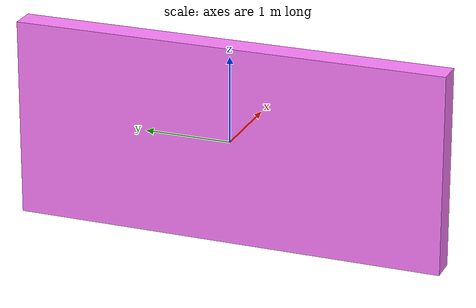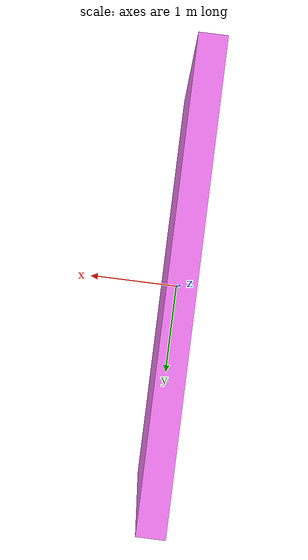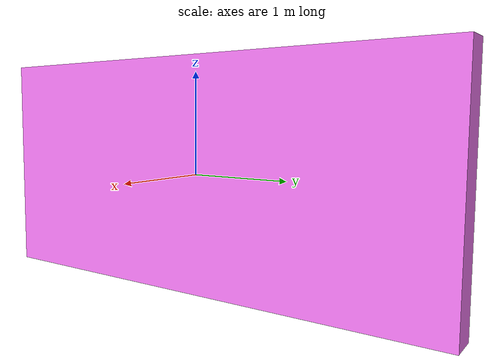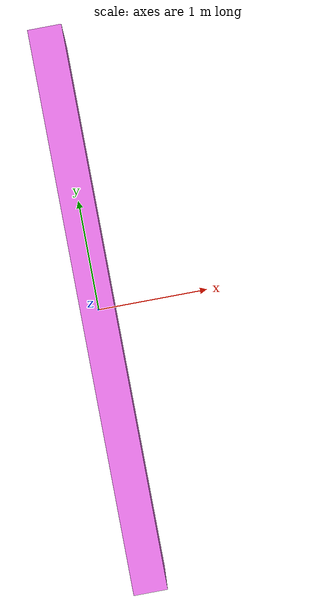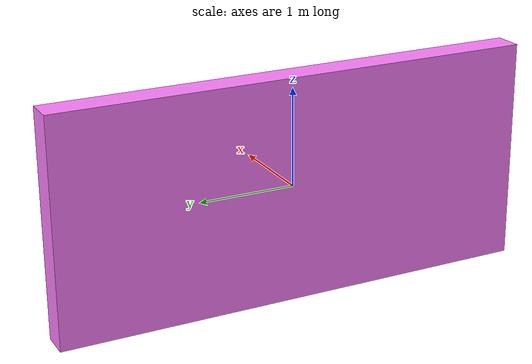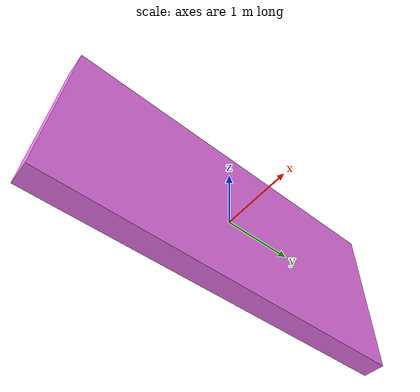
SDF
<?xml version="1.0"?>
<sdf version="1.5">
    <model name="wall">
        <link name="wall">
            <inertial>
                <inertia>
                    <ixx>0.126164</ixx>
                    <ixy>0</ixy>
                    <ixz>0</ixz>
                    <iyy>0.416519</iyy>
                    <iyz>0</iyz>
                    <izz>0.481014</izz>
                </inertia>
            </inertial>

            <visual name="visual">
                <geometry>
                    <box>
                        <size>0.3 5 2.3</size>
                    </box>
                </geometry>
                <material>
                    <ambient>1.0 0.5 1.0 1</ambient>
                    <diffuse>1.0 0.5 1.0 1</diffuse>
                    <specular>1.0 0.5 1.0 1</specular>
                </material>
            </visual>
            <collision name="collision">
                <geometry>
                    <box>
                        <size>0.3 5 2.3</size>
                    </box>
                </geometry>
            </collision>
        </link>
    </model>
</sdf>
